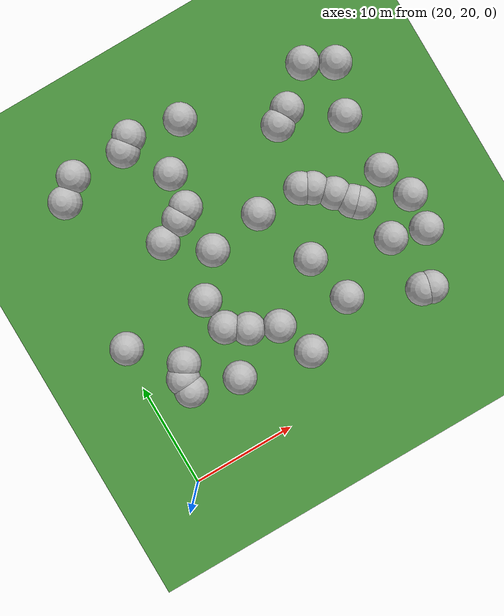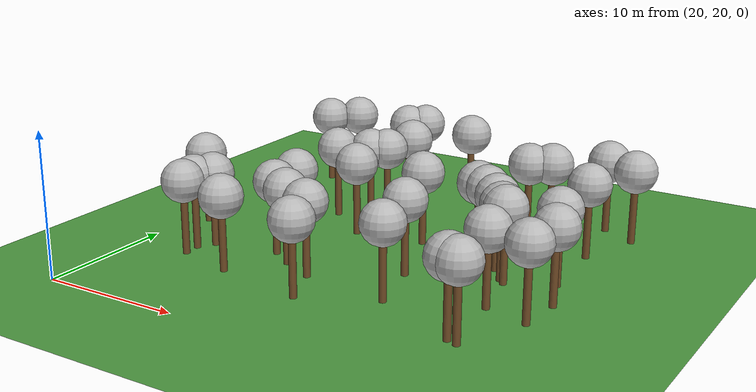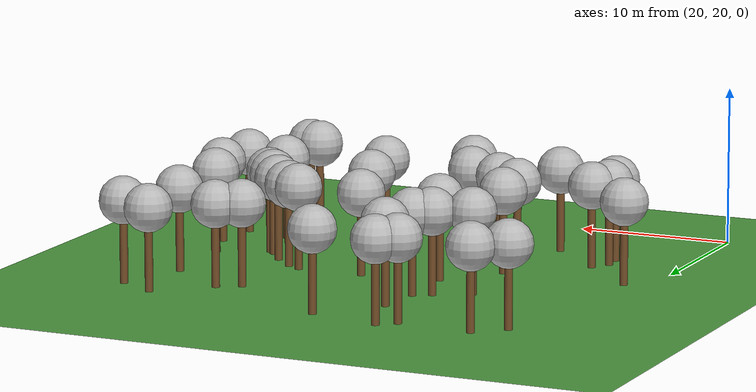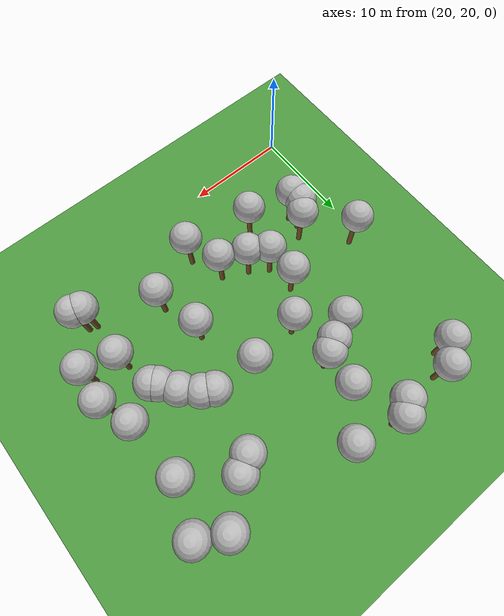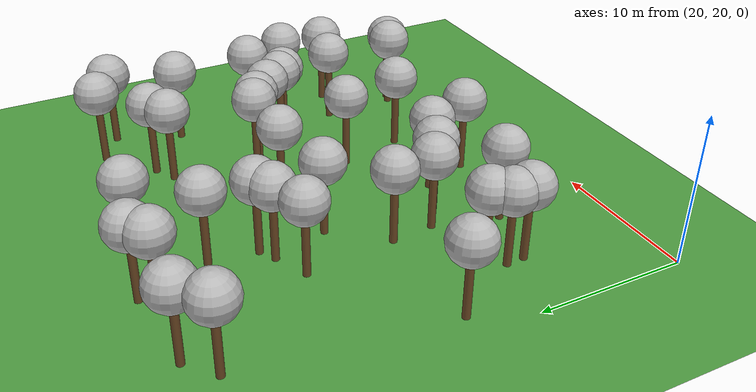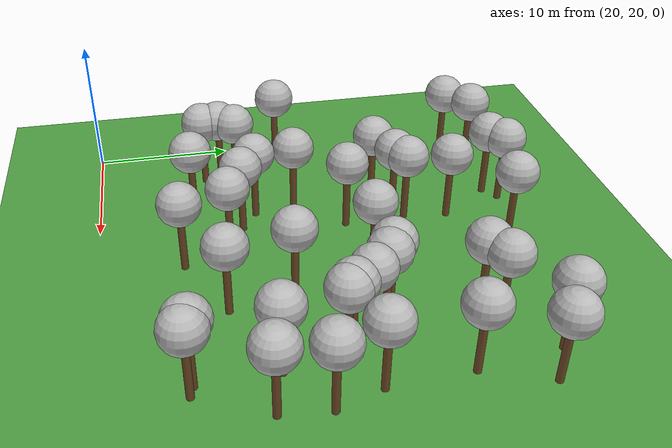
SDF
<sdf version="1.5">
 <world name="default">
  <model name="tree_simple475">
   <static>1</static>
   <link name="link">
    <pose>0 0 0.1 0 -0 0</pose>
    <collision name="collision_trunk">
     <pose>0 0 2 0 -0 0</pose>
     <geometry><cylinder><radius>0.25</radius><length>4</length></cylinder></geometry>
    </collision>
    <collision name="collision_treetop">
     <pose>0 0 5.2 0 -0 0</pose>
     <geometry><sphere><radius>1.5</radius></sphere></geometry>
    </collision>
    <visual name="trunk">
     <pose>0 0 2 0 -0 0</pose>
     <geometry><cylinder><radius>0.25</radius><length>4</length></cylinder></geometry>
     <material>
      <script>
       <uri>model://tree_simple/scripts</uri>
       <uri>model://tree_simple/materials/textures</uri>
       <name>TreeSimple/Trunk</name>
      </script>
     </material>
    </visual>
    <visual name="treetop">
     <pose>0 0 5.2 0 -0 0</pose>
     <geometry><sphere><radius>1.5</radius></sphere></geometry>
     <material>
      <script>
       <uri>model://tree_simple/scripts</uri>
       <uri>model://tree_simple/materials/textures</uri>
       <name>TreeSimple/Treetop</name>
      </script>
     </material>
    </visual>
   </link>
   <pose>30.9431222124 49.7431013716 0 0 -0 0</pose>
  </model>
  <model name="tree_simple459">
   <static>1</static>
   <link name="link">
    <pose>0 0 0.1 0 -0 0</pose>
    <collision name="collision_trunk">
     <pose>0 0 2 0 -0 0</pose>
     <geometry><cylinder><radius>0.25</radius><length>4</length></cylinder></geometry>
    </collision>
    <collision name="collision_treetop">
     <pose>0 0 5.2 0 -0 0</pose>
     <geometry><sphere><radius>1.5</radius></sphere></geometry>
    </collision>
    <visual name="trunk">
     <pose>0 0 2 0 -0 0</pose>
     <geometry><cylinder><radius>0.25</radius><length>4</length></cylinder></geometry>
     <material>
      <script>
       <uri>model://tree_simple/scripts</uri>
       <uri>model://tree_simple/materials/textures</uri>
       <name>TreeSimple/Trunk</name>
      </script>
     </material>
    </visual>
    <visual name="treetop">
     <pose>0 0 5.2 0 -0 0</pose>
     <geometry><sphere><radius>1.5</radius></sphere></geometry>
     <material>
      <script>
       <uri>model://tree_simple/scripts</uri>
       <uri>model://tree_simple/materials/textures</uri>
       <name>TreeSimple/Treetop</name>
      </script>
     </material>
    </visual>
   </link>
   <pose>23.3051385383 47.6025012909 0 0 -0 0</pose>
  </model>
  <model name="tree_simple452">
   <static>1</static>
   <link name="link">
    <pose>0 0 0.1 0 -0 0</pose>
    <collision name="collision_trunk">
     <pose>0 0 2 0 -0 0</pose>
     <geometry><cylinder><radius>0.25</radius><length>4</length></cylinder></geometry>
    </collision>
    <collision name="collision_treetop">
     <pose>0 0 5.2 0 -0 0</pose>
     <geometry><sphere><radius>1.5</radius></sphere></geometry>
    </collision>
    <visual name="trunk">
     <pose>0 0 2 0 -0 0</pose>
     <geometry><cylinder><radius>0.25</radius><length>4</length></cylinder></geometry>
     <material>
      <script>
       <uri>model://tree_simple/scripts</uri>
       <uri>model://tree_simple/materials/textures</uri>
       <name>TreeSimple/Trunk</name>
      </script>
     </material>
    </visual>
    <visual name="treetop">
     <pose>0 0 5.2 0 -0 0</pose>
     <geometry><sphere><radius>1.5</radius></sphere></geometry>
     <material>
      <script>
       <uri>model://tree_simple/scripts</uri>
       <uri>model://tree_simple/materials/textures</uri>
       <name>TreeSimple/Treetop</name>
      </script>
     </material>
    </visual>
   </link>
   <pose>21.4881506157 34.0286005496 0 0 -0 0</pose>
  </model>
  <model name="tree_simple449">
   <static>1</static>
   <link name="link">
    <pose>0 0 0.1 0 -0 0</pose>
    <collision name="collision_trunk">
     <pose>0 0 2 0 -0 0</pose>
     <geometry><cylinder><radius>0.25</radius><length>4</length></cylinder></geometry>
    </collision>
    <collision name="collision_treetop">
     <pose>0 0 5.2 0 -0 0</pose>
     <geometry><sphere><radius>1.5</radius></sphere></geometry>
    </collision>
    <visual name="trunk">
     <pose>0 0 2 0 -0 0</pose>
     <geometry><cylinder><radius>0.25</radius><length>4</length></cylinder></geometry>
     <material>
      <script>
       <uri>model://tree_simple/scripts</uri>
       <uri>model://tree_simple/materials/textures</uri>
       <name>TreeSimple/Trunk</name>
      </script>
     </material>
    </visual>
    <visual name="treetop">
     <pose>0 0 5.2 0 -0 0</pose>
     <geometry><sphere><radius>1.5</radius></sphere></geometry>
     <material>
      <script>
       <uri>model://tree_simple/scripts</uri>
       <uri>model://tree_simple/materials/textures</uri>
       <name>TreeSimple/Treetop</name>
      </script>
     </material>
    </visual>
   </link>
   <pose>32.2301413543 37.584175072 0 0 -0 0</pose>
  </model>
  <model name="tree_simple435">
   <static>1</static>
   <link name="link">
    <pose>0 0 0.1 0 -0 0</pose>
    <collision name="collision_trunk">
     <pose>0 0 2 0 -0 0</pose>
     <geometry><cylinder><radius>0.25</radius><length>4</length></cylinder></geometry>
    </collision>
    <collision name="collision_treetop">
     <pose>0 0 5.2 0 -0 0</pose>
     <geometry><sphere><radius>1.5</radius></sphere></geometry>
    </collision>
    <visual name="trunk">
     <pose>0 0 2 0 -0 0</pose>
     <geometry><cylinder><radius>0.25</radius><length>4</length></cylinder></geometry>
     <material>
      <script>
       <uri>model://tree_simple/scripts</uri>
       <uri>model://tree_simple/materials/textures</uri>
       <name>TreeSimple/Trunk</name>
      </script>
     </material>
    </visual>
    <visual name="treetop">
     <pose>0 0 5.2 0 -0 0</pose>
     <geometry><sphere><radius>1.5</radius></sphere></geometry>
     <material>
      <script>
       <uri>model://tree_simple/scripts</uri>
       <uri>model://tree_simple/materials/textures</uri>
       <name>TreeSimple/Treetop</name>
      </script>
     </material>
    </visual>
   </link>
   <pose>25.0532985597 49.162593115 0 0 -0 0</pose>
  </model>
  <model name="tree_simple426">
   <static>1</static>
   <link name="link">
    <pose>0 0 0.1 0 -0 0</pose>
    <collision name="collision_trunk">
     <pose>0 0 2 0 -0 0</pose>
     <geometry><cylinder><radius>0.25</radius><length>4</length></cylinder></geometry>
    </collision>
    <collision name="collision_treetop">
     <pose>0 0 5.2 0 -0 0</pose>
     <geometry><sphere><radius>1.5</radius></sphere></geometry>
    </collision>
    <visual name="trunk">
     <pose>0 0 2 0 -0 0</pose>
     <geometry><cylinder><radius>0.25</radius><length>4</length></cylinder></geometry>
     <material>
      <script>
       <uri>model://tree_simple/scripts</uri>
       <uri>model://tree_simple/materials/textures</uri>
       <name>TreeSimple/Trunk</name>
      </script>
     </material>
    </visual>
    <visual name="treetop">
     <pose>0 0 5.2 0 -0 0</pose>
     <geometry><sphere><radius>1.5</radius></sphere></geometry>
     <material>
      <script>
       <uri>model://tree_simple/scripts</uri>
       <uri>model://tree_simple/materials/textures</uri>
       <name>TreeSimple/Treetop</name>
      </script>
     </material>
    </visual>
   </link>
   <pose>48.2961501598 36.1951986296 0 0 -0 0</pose>
  </model>
  <model name="tree_simple414">
   <static>1</static>
   <link name="link">
    <pose>0 0 0.1 0 -0 0</pose>
    <collision name="collision_trunk">
     <pose>0 0 2 0 -0 0</pose>
     <geometry><cylinder><radius>0.25</radius><length>4</length></cylinder></geometry>
    </collision>
    <collision name="collision_treetop">
     <pose>0 0 5.2 0 -0 0</pose>
     <geometry><sphere><radius>1.5</radius></sphere></geometry>
    </collision>
    <visual name="trunk">
     <pose>0 0 2 0 -0 0</pose>
     <geometry><cylinder><radius>0.25</radius><length>4</length></cylinder></geometry>
     <material>
      <script>
       <uri>model://tree_simple/scripts</uri>
       <uri>model://tree_simple/materials/textures</uri>
       <name>TreeSimple/Trunk</name>
      </script>
     </material>
    </visual>
    <visual name="treetop">
     <pose>0 0 5.2 0 -0 0</pose>
     <geometry><sphere><radius>1.5</radius></sphere></geometry>
     <material>
      <script>
       <uri>model://tree_simple/scripts</uri>
       <uri>model://tree_simple/materials/textures</uri>
       <name>TreeSimple/Treetop</name>
      </script>
     </material>
    </visual>
   </link>
   <pose>44.7953546514 35.1223055557 0 0 -0 0</pose>
  </model>
  <model name="tree_simple402">
   <static>1</static>
   <link name="link">
    <pose>0 0 0.1 0 -0 0</pose>
    <collision name="collision_trunk">
     <pose>0 0 2 0 -0 0</pose>
     <geometry><cylinder><radius>0.25</radius><length>4</length></cylinder></geometry>
    </collision>
    <collision name="collision_treetop">
     <pose>0 0 5.2 0 -0 0</pose>
     <geometry><sphere><radius>1.5</radius></sphere></geometry>
    </collision>
    <visual name="trunk">
     <pose>0 0 2 0 -0 0</pose>
     <geometry><cylinder><radius>0.25</radius><length>4</length></cylinder></geometry>
     <material>
      <script>
       <uri>model://tree_simple/scripts</uri>
       <uri>model://tree_simple/materials/textures</uri>
       <name>TreeSimple/Trunk</name>
      </script>
     </material>
    </visual>
    <visual name="treetop">
     <pose>0 0 5.2 0 -0 0</pose>
     <geometry><sphere><radius>1.5</radius></sphere></geometry>
     <material>
      <script>
       <uri>model://tree_simple/scripts</uri>
       <uri>model://tree_simple/materials/textures</uri>
       <name>TreeSimple/Treetop</name>
      </script>
     </material>
    </visual>
   </link>
   <pose>46.1530364681 25.5114731744 0 0 -0 0</pose>
  </model>
  <model name="tree_simple388">
   <static>1</static>
   <link name="link">
    <pose>0 0 0.1 0 -0 0</pose>
    <collision name="collision_trunk">
     <pose>0 0 2 0 -0 0</pose>
     <geometry><cylinder><radius>0.25</radius><length>4</length></cylinder></geometry>
    </collision>
    <collision name="collision_treetop">
     <pose>0 0 5.2 0 -0 0</pose>
     <geometry><sphere><radius>1.5</radius></sphere></geometry>
    </collision>
    <visual name="trunk">
     <pose>0 0 2 0 -0 0</pose>
     <geometry><cylinder><radius>0.25</radius><length>4</length></cylinder></geometry>
     <material>
      <script>
       <uri>model://tree_simple/scripts</uri>
       <uri>model://tree_simple/materials/textures</uri>
       <name>TreeSimple/Trunk</name>
      </script>
     </material>
    </visual>
    <visual name="treetop">
     <pose>0 0 5.2 0 -0 0</pose>
     <geometry><sphere><radius>1.5</radius></sphere></geometry>
     <material>
      <script>
       <uri>model://tree_simple/scripts</uri>
       <uri>model://tree_simple/materials/textures</uri>
       <name>TreeSimple/Treetop</name>
      </script>
     </material>
    </visual>
   </link>
   <pose>42.4041487093 37.8396173547 0 0 -0 0</pose>
  </model>
  <model name="tree_simple384">
   <static>1</static>
   <link name="link">
    <pose>0 0 0.1 0 -0 0</pose>
    <collision name="collision_trunk">
     <pose>0 0 2 0 -0 0</pose>
     <geometry><cylinder><radius>0.25</radius><length>4</length></cylinder></geometry>
    </collision>
    <collision name="collision_treetop">
     <pose>0 0 5.2 0 -0 0</pose>
     <geometry><sphere><radius>1.5</radius></sphere></geometry>
    </collision>
    <visual name="trunk">
     <pose>0 0 2 0 -0 0</pose>
     <geometry><cylinder><radius>0.25</radius><length>4</length></cylinder></geometry>
     <material>
      <script>
       <uri>model://tree_simple/scripts</uri>
       <uri>model://tree_simple/materials/textures</uri>
       <name>TreeSimple/Trunk</name>
      </script>
     </material>
    </visual>
    <visual name="treetop">
     <pose>0 0 5.2 0 -0 0</pose>
     <geometry><sphere><radius>1.5</radius></sphere></geometry>
     <material>
      <script>
       <uri>model://tree_simple/scripts</uri>
       <uri>model://tree_simple/materials/textures</uri>
       <name>TreeSimple/Treetop</name>
      </script>
     </material>
    </visual>
   </link>
   <pose>47.965270182 41.8315973536 0 0 -0 0</pose>
  </model>
  <model name="tree_simple366">
   <static>1</static>
   <link name="link">
    <pose>0 0 0.1 0 -0 0</pose>
    <collision name="collision_trunk">
     <pose>0 0 2 0 -0 0</pose>
     <geometry><cylinder><radius>0.25</radius><length>4</length></cylinder></geometry>
    </collision>
    <collision name="collision_treetop">
     <pose>0 0 5.2 0 -0 0</pose>
     <geometry><sphere><radius>1.5</radius></sphere></geometry>
    </collision>
    <visual name="trunk">
     <pose>0 0 2 0 -0 0</pose>
     <geometry><cylinder><radius>0.25</radius><length>4</length></cylinder></geometry>
     <material>
      <script>
       <uri>model://tree_simple/scripts</uri>
       <uri>model://tree_simple/materials/textures</uri>
       <name>TreeSimple/Trunk</name>
      </script>
     </material>
    </visual>
    <visual name="treetop">
     <pose>0 0 5.2 0 -0 0</pose>
     <geometry><sphere><radius>1.5</radius></sphere></geometry>
     <material>
      <script>
       <uri>model://tree_simple/scripts</uri>
       <uri>model://tree_simple/materials/textures</uri>
       <name>TreeSimple/Treetop</name>
      </script>
     </material>
    </visual>
   </link>
   <pose>37.2116014065 38.3075288524 0 0 -0 0</pose>
  </model>
  <model name="tree_simple345">
   <static>1</static>
   <link name="link">
    <pose>0 0 0.1 0 -0 0</pose>
    <collision name="collision_trunk">
     <pose>0 0 2 0 -0 0</pose>
     <geometry><cylinder><radius>0.25</radius><length>4</length></cylinder></geometry>
    </collision>
    <collision name="collision_treetop">
     <pose>0 0 5.2 0 -0 0</pose>
     <geometry><sphere><radius>1.5</radius></sphere></geometry>
    </collision>
    <visual name="trunk">
     <pose>0 0 2 0 -0 0</pose>
     <geometry><cylinder><radius>0.25</radius><length>4</length></cylinder></geometry>
     <material>
      <script>
       <uri>model://tree_simple/scripts</uri>
       <uri>model://tree_simple/materials/textures</uri>
       <name>TreeSimple/Trunk</name>
      </script>
     </material>
    </visual>
    <visual name="treetop">
     <pose>0 0 5.2 0 -0 0</pose>
     <geometry><sphere><radius>1.5</radius></sphere></geometry>
     <material>
      <script>
       <uri>model://tree_simple/scripts</uri>
       <uri>model://tree_simple/materials/textures</uri>
       <name>TreeSimple/Treetop</name>
      </script>
     </material>
    </visual>
   </link>
   <pose>28.6628994432 26.9095330542 0 0 -0 0</pose>
  </model>
  <model name="tree_simple337">
   <static>1</static>
   <link name="link">
    <pose>0 0 0.1 0 -0 0</pose>
    <collision name="collision_trunk">
     <pose>0 0 2 0 -0 0</pose>
     <geometry><cylinder><radius>0.25</radius><length>4</length></cylinder></geometry>
    </collision>
    <collision name="collision_treetop">
     <pose>0 0 5.2 0 -0 0</pose>
     <geometry><sphere><radius>1.5</radius></sphere></geometry>
    </collision>
    <visual name="trunk">
     <pose>0 0 2 0 -0 0</pose>
     <geometry><cylinder><radius>0.25</radius><length>4</length></cylinder></geometry>
     <material>
      <script>
       <uri>model://tree_simple/scripts</uri>
       <uri>model://tree_simple/materials/textures</uri>
       <name>TreeSimple/Trunk</name>
      </script>
     </material>
    </visual>
    <visual name="treetop">
     <pose>0 0 5.2 0 -0 0</pose>
     <geometry><sphere><radius>1.5</radius></sphere></geometry>
     <material>
      <script>
       <uri>model://tree_simple/scripts</uri>
       <uri>model://tree_simple/materials/textures</uri>
       <name>TreeSimple/Treetop</name>
      </script>
     </material>
    </visual>
   </link>
   <pose>43.9549385006 44.8684303608 0 0 -0 0</pose>
  </model>
  <model name="tree_simple332">
   <static>1</static>
   <link name="link">
    <pose>0 0 0.1 0 -0 0</pose>
    <collision name="collision_trunk">
     <pose>0 0 2 0 -0 0</pose>
     <geometry><cylinder><radius>0.25</radius><length>4</length></cylinder></geometry>
    </collision>
    <collision name="collision_treetop">
     <pose>0 0 5.2 0 -0 0</pose>
     <geometry><sphere><radius>1.5</radius></sphere></geometry>
    </collision>
    <visual name="trunk">
     <pose>0 0 2 0 -0 0</pose>
     <geometry><cylinder><radius>0.25</radius><length>4</length></cylinder></geometry>
     <material>
      <script>
       <uri>model://tree_simple/scripts</uri>
       <uri>model://tree_simple/materials/textures</uri>
       <name>TreeSimple/Trunk</name>
      </script>
     </material>
    </visual>
    <visual name="treetop">
     <pose>0 0 5.2 0 -0 0</pose>
     <geometry><sphere><radius>1.5</radius></sphere></geometry>
     <material>
      <script>
       <uri>model://tree_simple/scripts</uri>
       <uri>model://tree_simple/materials/textures</uri>
       <name>TreeSimple/Treetop</name>
      </script>
     </material>
    </visual>
   </link>
   <pose>39.1289157524 32.636662066 0 0 -0 0</pose>
  </model>
  <model name="tree_simple313">
   <static>1</static>
   <link name="link">
    <pose>0 0 0.1 0 -0 0</pose>
    <collision name="collision_trunk">
     <pose>0 0 2 0 -0 0</pose>
     <geometry><cylinder><radius>0.25</radius><length>4</length></cylinder></geometry>
    </collision>
    <collision name="collision_treetop">
     <pose>0 0 5.2 0 -0 0</pose>
     <geometry><sphere><radius>1.5</radius></sphere></geometry>
    </collision>
    <visual name="trunk">
     <pose>0 0 2 0 -0 0</pose>
     <geometry><cylinder><radius>0.25</radius><length>4</length></cylinder></geometry>
     <material>
      <script>
       <uri>model://tree_simple/scripts</uri>
       <uri>model://tree_simple/materials/textures</uri>
       <name>TreeSimple/Trunk</name>
      </script>
     </material>
    </visual>
    <visual name="treetop">
     <pose>0 0 5.2 0 -0 0</pose>
     <geometry><sphere><radius>1.5</radius></sphere></geometry>
     <material>
      <script>
       <uri>model://tree_simple/scripts</uri>
       <uri>model://tree_simple/materials/textures</uri>
       <name>TreeSimple/Treetop</name>
      </script>
     </material>
    </visual>
   </link>
   <pose>25.1046881591 30.4098930382 0 0 -0 0</pose>
  </model>
  <model name="tree_simple306">
   <static>1</static>
   <link name="link">
    <pose>0 0 0.1 0 -0 0</pose>
    <collision name="collision_trunk">
     <pose>0 0 2 0 -0 0</pose>
     <geometry><cylinder><radius>0.25</radius><length>4</length></cylinder></geometry>
    </collision>
    <collision name="collision_treetop">
     <pose>0 0 5.2 0 -0 0</pose>
     <geometry><sphere><radius>1.5</radius></sphere></geometry>
    </collision>
    <visual name="trunk">
     <pose>0 0 2 0 -0 0</pose>
     <geometry><cylinder><radius>0.25</radius><length>4</length></cylinder></geometry>
     <material>
      <script>
       <uri>model://tree_simple/scripts</uri>
       <uri>model://tree_simple/materials/textures</uri>
       <name>TreeSimple/Trunk</name>
      </script>
     </material>
    </visual>
    <visual name="treetop">
     <pose>0 0 5.2 0 -0 0</pose>
     <geometry><sphere><radius>1.5</radius></sphere></geometry>
     <material>
      <script>
       <uri>model://tree_simple/scripts</uri>
       <uri>model://tree_simple/materials/textures</uri>
       <name>TreeSimple/Treetop</name>
      </script>
     </material>
    </visual>
   </link>
   <pose>41.4749799485 38.3641433375 0 0 -0 0</pose>
  </model>
  <model name="tree_simple295">
   <static>1</static>
   <link name="link">
    <pose>0 0 0.1 0 -0 0</pose>
    <collision name="collision_trunk">
     <pose>0 0 2 0 -0 0</pose>
     <geometry><cylinder><radius>0.25</radius><length>4</length></cylinder></geometry>
    </collision>
    <collision name="collision_treetop">
     <pose>0 0 5.2 0 -0 0</pose>
     <geometry><sphere><radius>1.5</radius></sphere></geometry>
    </collision>
    <visual name="trunk">
     <pose>0 0 2 0 -0 0</pose>
     <geometry><cylinder><radius>0.25</radius><length>4</length></cylinder></geometry>
     <material>
      <script>
       <uri>model://tree_simple/scripts</uri>
       <uri>model://tree_simple/materials/textures</uri>
       <name>TreeSimple/Trunk</name>
      </script>
     </material>
    </visual>
    <visual name="treetop">
     <pose>0 0 5.2 0 -0 0</pose>
     <geometry><sphere><radius>1.5</radius></sphere></geometry>
     <material>
      <script>
       <uri>model://tree_simple/scripts</uri>
       <uri>model://tree_simple/materials/textures</uri>
       <name>TreeSimple/Treetop</name>
      </script>
     </material>
    </visual>
   </link>
   <pose>24.4545500201 28.0657933919 0 0 -0 0</pose>
  </model>
  <model name="tree_simple294">
   <static>1</static>
   <link name="link">
    <pose>0 0 0.1 0 -0 0</pose>
    <collision name="collision_trunk">
     <pose>0 0 2 0 -0 0</pose>
     <geometry><cylinder><radius>0.25</radius><length>4</length></cylinder></geometry>
    </collision>
    <collision name="collision_treetop">
     <pose>0 0 5.2 0 -0 0</pose>
     <geometry><sphere><radius>1.5</radius></sphere></geometry>
    </collision>
    <visual name="trunk">
     <pose>0 0 2 0 -0 0</pose>
     <geometry><cylinder><radius>0.25</radius><length>4</length></cylinder></geometry>
     <material>
      <script>
       <uri>model://tree_simple/scripts</uri>
       <uri>model://tree_simple/materials/textures</uri>
       <name>TreeSimple/Trunk</name>
      </script>
     </material>
    </visual>
    <visual name="treetop">
     <pose>0 0 5.2 0 -0 0</pose>
     <geometry><sphere><radius>1.5</radius></sphere></geometry>
     <material>
      <script>
       <uri>model://tree_simple/scripts</uri>
       <uri>model://tree_simple/materials/textures</uri>
       <name>TreeSimple/Treetop</name>
      </script>
     </material>
    </visual>
   </link>
   <pose>29.4568486027 34.1994676111 0 0 -0 0</pose>
  </model>
  <model name="tree_simple265">
   <static>1</static>
   <link name="link">
    <pose>0 0 0.1 0 -0 0</pose>
    <collision name="collision_trunk">
     <pose>0 0 2 0 -0 0</pose>
     <geometry><cylinder><radius>0.25</radius><length>4</length></cylinder></geometry>
    </collision>
    <collision name="collision_treetop">
     <pose>0 0 5.2 0 -0 0</pose>
     <geometry><sphere><radius>1.5</radius></sphere></geometry>
    </collision>
    <visual name="trunk">
     <pose>0 0 2 0 -0 0</pose>
     <geometry><cylinder><radius>0.25</radius><length>4</length></cylinder></geometry>
     <material>
      <script>
       <uri>model://tree_simple/scripts</uri>
       <uri>model://tree_simple/materials/textures</uri>
       <name>TreeSimple/Trunk</name>
      </script>
     </material>
    </visual>
    <visual name="treetop">
     <pose>0 0 5.2 0 -0 0</pose>
     <geometry><sphere><radius>1.5</radius></sphere></geometry>
     <material>
      <script>
       <uri>model://tree_simple/scripts</uri>
       <uri>model://tree_simple/materials/textures</uri>
       <name>TreeSimple/Treetop</name>
      </script>
     </material>
    </visual>
   </link>
   <pose>49.0905511153 29.866561196 0 0 -0 0</pose>
  </model>
  <model name="tree_simple258">
   <static>1</static>
   <link name="link">
    <pose>0 0 0.1 0 -0 0</pose>
    <collision name="collision_trunk">
     <pose>0 0 2 0 -0 0</pose>
     <geometry><cylinder><radius>0.25</radius><length>4</length></cylinder></geometry>
    </collision>
    <collision name="collision_treetop">
     <pose>0 0 5.2 0 -0 0</pose>
     <geometry><sphere><radius>1.5</radius></sphere></geometry>
    </collision>
    <visual name="trunk">
     <pose>0 0 2 0 -0 0</pose>
     <geometry><cylinder><radius>0.25</radius><length>4</length></cylinder></geometry>
     <material>
      <script>
       <uri>model://tree_simple/scripts</uri>
       <uri>model://tree_simple/materials/textures</uri>
       <name>TreeSimple/Trunk</name>
      </script>
     </material>
    </visual>
    <visual name="treetop">
     <pose>0 0 5.2 0 -0 0</pose>
     <geometry><sphere><radius>1.5</radius></sphere></geometry>
     <material>
      <script>
       <uri>model://tree_simple/scripts</uri>
       <uri>model://tree_simple/materials/textures</uri>
       <name>TreeSimple/Treetop</name>
      </script>
     </material>
    </visual>
   </link>
   <pose>24.3825797899 29.2966391115 0 0 -0 0</pose>
  </model>
  <model name="tree_simple238">
   <static>1</static>
   <link name="link">
    <pose>0 0 0.1 0 -0 0</pose>
    <collision name="collision_trunk">
     <pose>0 0 2 0 -0 0</pose>
     <geometry><cylinder><radius>0.25</radius><length>4</length></cylinder></geometry>
    </collision>
    <collision name="collision_treetop">
     <pose>0 0 5.2 0 -0 0</pose>
     <geometry><sphere><radius>1.5</radius></sphere></geometry>
    </collision>
    <visual name="trunk">
     <pose>0 0 2 0 -0 0</pose>
     <geometry><cylinder><radius>0.25</radius><length>4</length></cylinder></geometry>
     <material>
      <script>
       <uri>model://tree_simple/scripts</uri>
       <uri>model://tree_simple/materials/textures</uri>
       <name>TreeSimple/Trunk</name>
      </script>
     </material>
    </visual>
    <visual name="treetop">
     <pose>0 0 5.2 0 -0 0</pose>
     <geometry><sphere><radius>1.5</radius></sphere></geometry>
     <material>
      <script>
       <uri>model://tree_simple/scripts</uri>
       <uri>model://tree_simple/materials/textures</uri>
       <name>TreeSimple/Treetop</name>
      </script>
     </material>
    </visual>
   </link>
   <pose>46.8869167901 25.2834545483 0 0 -0 0</pose>
  </model>
  <model name="tree_simple230">
   <static>1</static>
   <link name="link">
    <pose>0 0 0.1 0 -0 0</pose>
    <collision name="collision_trunk">
     <pose>0 0 2 0 -0 0</pose>
     <geometry><cylinder><radius>0.25</radius><length>4</length></cylinder></geometry>
    </collision>
    <collision name="collision_treetop">
     <pose>0 0 5.2 0 -0 0</pose>
     <geometry><sphere><radius>1.5</radius></sphere></geometry>
    </collision>
    <visual name="trunk">
     <pose>0 0 2 0 -0 0</pose>
     <geometry><cylinder><radius>0.25</radius><length>4</length></cylinder></geometry>
     <material>
      <script>
       <uri>model://tree_simple/scripts</uri>
       <uri>model://tree_simple/materials/textures</uri>
       <name>TreeSimple/Trunk</name>
      </script>
     </material>
    </visual>
    <visual name="treetop">
     <pose>0 0 5.2 0 -0 0</pose>
     <geometry><sphere><radius>1.5</radius></sphere></geometry>
     <material>
      <script>
       <uri>model://tree_simple/scripts</uri>
       <uri>model://tree_simple/materials/textures</uri>
       <name>TreeSimple/Treetop</name>
      </script>
     </material>
    </visual>
   </link>
   <pose>49.3839982887 33.0886722223 0 0 -0 0</pose>
  </model>
  <model name="tree_simple197">
   <static>1</static>
   <link name="link">
    <pose>0 0 0.1 0 -0 0</pose>
    <collision name="collision_trunk">
     <pose>0 0 2 0 -0 0</pose>
     <geometry><cylinder><radius>0.25</radius><length>4</length></cylinder></geometry>
    </collision>
    <collision name="collision_treetop">
     <pose>0 0 5.2 0 -0 0</pose>
     <geometry><sphere><radius>1.5</radius></sphere></geometry>
    </collision>
    <visual name="trunk">
     <pose>0 0 2 0 -0 0</pose>
     <geometry><cylinder><radius>0.25</radius><length>4</length></cylinder></geometry>
     <material>
      <script>
       <uri>model://tree_simple/scripts</uri>
       <uri>model://tree_simple/materials/textures</uri>
       <name>TreeSimple/Trunk</name>
      </script>
     </material>
    </visual>
    <visual name="treetop">
     <pose>0 0 5.2 0 -0 0</pose>
     <geometry><sphere><radius>1.5</radius></sphere></geometry>
     <material>
      <script>
       <uri>model://tree_simple/scripts</uri>
       <uri>model://tree_simple/materials/textures</uri>
       <name>TreeSimple/Treetop</name>
      </script>
     </material>
    </visual>
   </link>
   <pose>45.2259514073 34.7129577048 0 0 -0 0</pose>
  </model>
  <model name="tree_simple190">
   <static>1</static>
   <link name="link">
    <pose>0 0 0.1 0 -0 0</pose>
    <collision name="collision_trunk">
     <pose>0 0 2 0 -0 0</pose>
     <geometry><cylinder><radius>0.25</radius><length>4</length></cylinder></geometry>
    </collision>
    <collision name="collision_treetop">
     <pose>0 0 5.2 0 -0 0</pose>
     <geometry><sphere><radius>1.5</radius></sphere></geometry>
    </collision>
    <visual name="trunk">
     <pose>0 0 2 0 -0 0</pose>
     <geometry><cylinder><radius>0.25</radius><length>4</length></cylinder></geometry>
     <material>
      <script>
       <uri>model://tree_simple/scripts</uri>
       <uri>model://tree_simple/materials/textures</uri>
       <name>TreeSimple/Trunk</name>
      </script>
     </material>
    </visual>
    <visual name="treetop">
     <pose>0 0 5.2 0 -0 0</pose>
     <geometry><sphere><radius>1.5</radius></sphere></geometry>
     <material>
      <script>
       <uri>model://tree_simple/scripts</uri>
       <uri>model://tree_simple/materials/textures</uri>
       <name>TreeSimple/Treetop</name>
      </script>
     </material>
    </visual>
   </link>
   <pose>33.8682165362 29.0192768916 0 0 -0 0</pose>
  </model>
  <model name="tree_simple180">
   <static>1</static>
   <link name="link">
    <pose>0 0 0.1 0 -0 0</pose>
    <collision name="collision_trunk">
     <pose>0 0 2 0 -0 0</pose>
     <geometry><cylinder><radius>0.25</radius><length>4</length></cylinder></geometry>
    </collision>
    <collision name="collision_treetop">
     <pose>0 0 5.2 0 -0 0</pose>
     <geometry><sphere><radius>1.5</radius></sphere></geometry>
    </collision>
    <visual name="trunk">
     <pose>0 0 2 0 -0 0</pose>
     <geometry><cylinder><radius>0.25</radius><length>4</length></cylinder></geometry>
     <material>
      <script>
       <uri>model://tree_simple/scripts</uri>
       <uri>model://tree_simple/materials/textures</uri>
       <name>TreeSimple/Trunk</name>
      </script>
     </material>
    </visual>
    <visual name="treetop">
     <pose>0 0 5.2 0 -0 0</pose>
     <geometry><sphere><radius>1.5</radius></sphere></geometry>
     <material>
      <script>
       <uri>model://tree_simple/scripts</uri>
       <uri>model://tree_simple/materials/textures</uri>
       <name>TreeSimple/Treetop</name>
      </script>
     </material>
    </visual>
   </link>
   <pose>31.0354412198 41.3621247095 0 0 -0 0</pose>
  </model>
  <model name="tree_simple164">
   <static>1</static>
   <link name="link">
    <pose>0 0 0.1 0 -0 0</pose>
    <collision name="collision_trunk">
     <pose>0 0 2 0 -0 0</pose>
     <geometry><cylinder><radius>0.25</radius><length>4</length></cylinder></geometry>
    </collision>
    <collision name="collision_treetop">
     <pose>0 0 5.2 0 -0 0</pose>
     <geometry><sphere><radius>1.5</radius></sphere></geometry>
    </collision>
    <visual name="trunk">
     <pose>0 0 2 0 -0 0</pose>
     <geometry><cylinder><radius>0.25</radius><length>4</length></cylinder></geometry>
     <material>
      <script>
       <uri>model://tree_simple/scripts</uri>
       <uri>model://tree_simple/materials/textures</uri>
       <name>TreeSimple/Trunk</name>
      </script>
     </material>
    </visual>
    <visual name="treetop">
     <pose>0 0 5.2 0 -0 0</pose>
     <geometry><sphere><radius>1.5</radius></sphere></geometry>
     <material>
      <script>
       <uri>model://tree_simple/scripts</uri>
       <uri>model://tree_simple/materials/textures</uri>
       <name>TreeSimple/Treetop</name>
      </script>
     </material>
    </visual>
   </link>
   <pose>32.4161735763 45.136147052 0 0 -0 0</pose>
  </model>
  <model name="tree_simple159">
   <static>1</static>
   <link name="link">
    <pose>0 0 0.1 0 -0 0</pose>
    <collision name="collision_trunk">
     <pose>0 0 2 0 -0 0</pose>
     <geometry><cylinder><radius>0.25</radius><length>4</length></cylinder></geometry>
    </collision>
    <collision name="collision_treetop">
     <pose>0 0 5.2 0 -0 0</pose>
     <geometry><sphere><radius>1.5</radius></sphere></geometry>
    </collision>
    <visual name="trunk">
     <pose>0 0 2 0 -0 0</pose>
     <geometry><cylinder><radius>0.25</radius><length>4</length></cylinder></geometry>
     <material>
      <script>
       <uri>model://tree_simple/scripts</uri>
       <uri>model://tree_simple/materials/textures</uri>
       <name>TreeSimple/Trunk</name>
      </script>
     </material>
    </visual>
    <visual name="treetop">
     <pose>0 0 5.2 0 -0 0</pose>
     <geometry><sphere><radius>1.5</radius></sphere></geometry>
     <material>
      <script>
       <uri>model://tree_simple/scripts</uri>
       <uri>model://tree_simple/materials/textures</uri>
       <name>TreeSimple/Treetop</name>
      </script>
     </material>
    </visual>
   </link>
   <pose>28.8379877366 40.3060921844 0 0 -0 0</pose>
  </model>
  <model name="tree_simple150">
   <static>1</static>
   <link name="link">
    <pose>0 0 0.1 0 -0 0</pose>
    <collision name="collision_trunk">
     <pose>0 0 2 0 -0 0</pose>
     <geometry><cylinder><radius>0.25</radius><length>4</length></cylinder></geometry>
    </collision>
    <collision name="collision_treetop">
     <pose>0 0 5.2 0 -0 0</pose>
     <geometry><sphere><radius>1.5</radius></sphere></geometry>
    </collision>
    <visual name="trunk">
     <pose>0 0 2 0 -0 0</pose>
     <geometry><cylinder><radius>0.25</radius><length>4</length></cylinder></geometry>
     <material>
      <script>
       <uri>model://tree_simple/scripts</uri>
       <uri>model://tree_simple/materials/textures</uri>
       <name>TreeSimple/Trunk</name>
      </script>
     </material>
    </visual>
    <visual name="treetop">
     <pose>0 0 5.2 0 -0 0</pose>
     <geometry><sphere><radius>1.5</radius></sphere></geometry>
     <material>
      <script>
       <uri>model://tree_simple/scripts</uri>
       <uri>model://tree_simple/materials/textures</uri>
       <name>TreeSimple/Treetop</name>
      </script>
     </material>
    </visual>
   </link>
   <pose>40.1655547132 28.2074332225 0 0 -0 0</pose>
  </model>
  <model name="tree_simple144">
   <static>1</static>
   <link name="link">
    <pose>0 0 0.1 0 -0 0</pose>
    <collision name="collision_trunk">
     <pose>0 0 2 0 -0 0</pose>
     <geometry><cylinder><radius>0.25</radius><length>4</length></cylinder></geometry>
    </collision>
    <collision name="collision_treetop">
     <pose>0 0 5.2 0 -0 0</pose>
     <geometry><sphere><radius>1.5</radius></sphere></geometry>
    </collision>
    <visual name="trunk">
     <pose>0 0 2 0 -0 0</pose>
     <geometry><cylinder><radius>0.25</radius><length>4</length></cylinder></geometry>
     <material>
      <script>
       <uri>model://tree_simple/scripts</uri>
       <uri>model://tree_simple/materials/textures</uri>
       <name>TreeSimple/Trunk</name>
      </script>
     </material>
    </visual>
    <visual name="treetop">
     <pose>0 0 5.2 0 -0 0</pose>
     <geometry><sphere><radius>1.5</radius></sphere></geometry>
     <material>
      <script>
       <uri>model://tree_simple/scripts</uri>
       <uri>model://tree_simple/materials/textures</uri>
       <name>TreeSimple/Treetop</name>
      </script>
     </material>
    </visual>
   </link>
   <pose>29.8740769381 48.8863352602 0 0 -0 0</pose>
  </model>
  <model name="tree_simple131">
   <static>1</static>
   <link name="link">
    <pose>0 0 0.1 0 -0 0</pose>
    <collision name="collision_trunk">
     <pose>0 0 2 0 -0 0</pose>
     <geometry><cylinder><radius>0.25</radius><length>4</length></cylinder></geometry>
    </collision>
    <collision name="collision_treetop">
     <pose>0 0 5.2 0 -0 0</pose>
     <geometry><sphere><radius>1.5</radius></sphere></geometry>
    </collision>
    <visual name="trunk">
     <pose>0 0 2 0 -0 0</pose>
     <geometry><cylinder><radius>0.25</radius><length>4</length></cylinder></geometry>
     <material>
      <script>
       <uri>model://tree_simple/scripts</uri>
       <uri>model://tree_simple/materials/textures</uri>
       <name>TreeSimple/Trunk</name>
      </script>
     </material>
    </visual>
    <visual name="treetop">
     <pose>0 0 5.2 0 -0 0</pose>
     <geometry><sphere><radius>1.5</radius></sphere></geometry>
     <material>
      <script>
       <uri>model://tree_simple/scripts</uri>
       <uri>model://tree_simple/materials/textures</uri>
       <name>TreeSimple/Treetop</name>
      </script>
     </material>
    </visual>
   </link>
   <pose>46.034478037 30.677477771 0 0 -0 0</pose>
  </model>
  <model name="tree_simple99">
   <static>1</static>
   <link name="link">
    <pose>0 0 0.1 0 -0 0</pose>
    <collision name="collision_trunk">
     <pose>0 0 2 0 -0 0</pose>
     <geometry><cylinder><radius>0.25</radius><length>4</length></cylinder></geometry>
    </collision>
    <collision name="collision_treetop">
     <pose>0 0 5.2 0 -0 0</pose>
     <geometry><sphere><radius>1.5</radius></sphere></geometry>
    </collision>
    <visual name="trunk">
     <pose>0 0 2 0 -0 0</pose>
     <geometry><cylinder><radius>0.25</radius><length>4</length></cylinder></geometry>
     <material>
      <script>
       <uri>model://tree_simple/scripts</uri>
       <uri>model://tree_simple/materials/textures</uri>
       <name>TreeSimple/Trunk</name>
      </script>
     </material>
    </visual>
    <visual name="treetop">
     <pose>0 0 5.2 0 -0 0</pose>
     <geometry><sphere><radius>1.5</radius></sphere></geometry>
     <material>
      <script>
       <uri>model://tree_simple/scripts</uri>
       <uri>model://tree_simple/materials/textures</uri>
       <name>TreeSimple/Treetop</name>
      </script>
     </material>
    </visual>
   </link>
   <pose>43.7646885834 36.5094094544 0 0 -0 0</pose>
  </model>
  <model name="tree_simple97">
   <static>1</static>
   <link name="link">
    <pose>0 0 0.1 0 -0 0</pose>
    <collision name="collision_trunk">
     <pose>0 0 2 0 -0 0</pose>
     <geometry><cylinder><radius>0.25</radius><length>4</length></cylinder></geometry>
    </collision>
    <collision name="collision_treetop">
     <pose>0 0 5.2 0 -0 0</pose>
     <geometry><sphere><radius>1.5</radius></sphere></geometry>
    </collision>
    <visual name="trunk">
     <pose>0 0 2 0 -0 0</pose>
     <geometry><cylinder><radius>0.25</radius><length>4</length></cylinder></geometry>
     <material>
      <script>
       <uri>model://tree_simple/scripts</uri>
       <uri>model://tree_simple/materials/textures</uri>
       <name>TreeSimple/Trunk</name>
      </script>
     </material>
    </visual>
    <visual name="treetop">
     <pose>0 0 5.2 0 -0 0</pose>
     <geometry><sphere><radius>1.5</radius></sphere></geometry>
     <material>
      <script>
       <uri>model://tree_simple/scripts</uri>
       <uri>model://tree_simple/materials/textures</uri>
       <name>TreeSimple/Treetop</name>
      </script>
     </material>
    </visual>
   </link>
   <pose>31.4551659001 30.1710524081 0 0 -0 0</pose>
  </model>
  <model name="tree_simple78">
   <static>1</static>
   <link name="link">
    <pose>0 0 0.1 0 -0 0</pose>
    <collision name="collision_trunk">
     <pose>0 0 2 0 -0 0</pose>
     <geometry><cylinder><radius>0.25</radius><length>4</length></cylinder></geometry>
    </collision>
    <collision name="collision_treetop">
     <pose>0 0 5.2 0 -0 0</pose>
     <geometry><sphere><radius>1.5</radius></sphere></geometry>
    </collision>
    <visual name="trunk">
     <pose>0 0 2 0 -0 0</pose>
     <geometry><cylinder><radius>0.25</radius><length>4</length></cylinder></geometry>
     <material>
      <script>
       <uri>model://tree_simple/scripts</uri>
       <uri>model://tree_simple/materials/textures</uri>
       <name>TreeSimple/Trunk</name>
      </script>
     </material>
    </visual>
    <visual name="treetop">
     <pose>0 0 5.2 0 -0 0</pose>
     <geometry><sphere><radius>1.5</radius></sphere></geometry>
     <material>
      <script>
       <uri>model://tree_simple/scripts</uri>
       <uri>model://tree_simple/materials/textures</uri>
       <name>TreeSimple/Treetop</name>
      </script>
     </material>
    </visual>
   </link>
   <pose>35.525854971 48.7689145504 0 0 -0 0</pose>
  </model>
  <model name="tree_simple65">
   <static>1</static>
   <link name="link">
    <pose>0 0 0.1 0 -0 0</pose>
    <collision name="collision_trunk">
     <pose>0 0 2 0 -0 0</pose>
     <geometry><cylinder><radius>0.25</radius><length>4</length></cylinder></geometry>
    </collision>
    <collision name="collision_treetop">
     <pose>0 0 5.2 0 -0 0</pose>
     <geometry><sphere><radius>1.5</radius></sphere></geometry>
    </collision>
    <visual name="trunk">
     <pose>0 0 2 0 -0 0</pose>
     <geometry><cylinder><radius>0.25</radius><length>4</length></cylinder></geometry>
     <material>
      <script>
       <uri>model://tree_simple/scripts</uri>
       <uri>model://tree_simple/materials/textures</uri>
       <name>TreeSimple/Trunk</name>
      </script>
     </material>
    </visual>
    <visual name="treetop">
     <pose>0 0 5.2 0 -0 0</pose>
     <geometry><sphere><radius>1.5</radius></sphere></geometry>
     <material>
      <script>
       <uri>model://tree_simple/scripts</uri>
       <uri>model://tree_simple/materials/textures</uri>
       <name>TreeSimple/Treetop</name>
      </script>
     </material>
    </visual>
   </link>
   <pose>42.5612978855 44.0438819022 0 0 -0 0</pose>
  </model>
  <model name="tree_simple47">
   <static>1</static>
   <link name="link">
    <pose>0 0 0.1 0 -0 0</pose>
    <collision name="collision_trunk">
     <pose>0 0 2 0 -0 0</pose>
     <geometry><cylinder><radius>0.25</radius><length>4</length></cylinder></geometry>
    </collision>
    <collision name="collision_treetop">
     <pose>0 0 5.2 0 -0 0</pose>
     <geometry><sphere><radius>1.5</radius></sphere></geometry>
    </collision>
    <visual name="trunk">
     <pose>0 0 2 0 -0 0</pose>
     <geometry><cylinder><radius>0.25</radius><length>4</length></cylinder></geometry>
     <material>
      <script>
       <uri>model://tree_simple/scripts</uri>
       <uri>model://tree_simple/materials/textures</uri>
       <name>TreeSimple/Trunk</name>
      </script>
     </material>
    </visual>
    <visual name="treetop">
     <pose>0 0 5.2 0 -0 0</pose>
     <geometry><sphere><radius>1.5</radius></sphere></geometry>
     <material>
      <script>
       <uri>model://tree_simple/scripts</uri>
       <uri>model://tree_simple/materials/textures</uri>
       <name>TreeSimple/Treetop</name>
      </script>
     </material>
    </visual>
   </link>
   <pose>29.7448798929 31.3110169918 0 0 -0 0</pose>
  </model>
  <model name="tree_simple44">
   <static>1</static>
   <link name="link">
    <pose>0 0 0.1 0 -0 0</pose>
    <collision name="collision_trunk">
     <pose>0 0 2 0 -0 0</pose>
     <geometry><cylinder><radius>0.25</radius><length>4</length></cylinder></geometry>
    </collision>
    <collision name="collision_treetop">
     <pose>0 0 5.2 0 -0 0</pose>
     <geometry><sphere><radius>1.5</radius></sphere></geometry>
    </collision>
    <visual name="trunk">
     <pose>0 0 2 0 -0 0</pose>
     <geometry><cylinder><radius>0.25</radius><length>4</length></cylinder></geometry>
     <material>
      <script>
       <uri>model://tree_simple/scripts</uri>
       <uri>model://tree_simple/materials/textures</uri>
       <name>TreeSimple/Trunk</name>
      </script>
     </material>
    </visual>
    <visual name="treetop">
     <pose>0 0 5.2 0 -0 0</pose>
     <geometry><sphere><radius>1.5</radius></sphere></geometry>
     <material>
      <script>
       <uri>model://tree_simple/scripts</uri>
       <uri>model://tree_simple/materials/textures</uri>
       <name>TreeSimple/Treetop</name>
      </script>
     </material>
    </visual>
   </link>
   <pose>35.1253684335 25.7534131059 0 0 -0 0</pose>
  </model>
  <model name="tree_simple33">
   <static>1</static>
   <link name="link">
    <pose>0 0 0.1 0 -0 0</pose>
    <collision name="collision_trunk">
     <pose>0 0 2 0 -0 0</pose>
     <geometry><cylinder><radius>0.25</radius><length>4</length></cylinder></geometry>
    </collision>
    <collision name="collision_treetop">
     <pose>0 0 5.2 0 -0 0</pose>
     <geometry><sphere><radius>1.5</radius></sphere></geometry>
    </collision>
    <visual name="trunk">
     <pose>0 0 2 0 -0 0</pose>
     <geometry><cylinder><radius>0.25</radius><length>4</length></cylinder></geometry>
     <material>
      <script>
       <uri>model://tree_simple/scripts</uri>
       <uri>model://tree_simple/materials/textures</uri>
       <name>TreeSimple/Trunk</name>
      </script>
     </material>
    </visual>
    <visual name="treetop">
     <pose>0 0 5.2 0 -0 0</pose>
     <geometry><sphere><radius>1.5</radius></sphere></geometry>
     <material>
      <script>
       <uri>model://tree_simple/scripts</uri>
       <uri>model://tree_simple/materials/textures</uri>
       <name>TreeSimple/Treetop</name>
      </script>
     </material>
    </visual>
   </link>
   <pose>49.5679198659 46.2009891227 0 0 -0 0</pose>
  </model>
  <model name="tree_simple24">
   <static>1</static>
   <link name="link">
    <pose>0 0 0.1 0 -0 0</pose>
    <collision name="collision_trunk">
     <pose>0 0 2 0 -0 0</pose>
     <geometry><cylinder><radius>0.25</radius><length>4</length></cylinder></geometry>
    </collision>
    <collision name="collision_treetop">
     <pose>0 0 5.2 0 -0 0</pose>
     <geometry><sphere><radius>1.5</radius></sphere></geometry>
    </collision>
    <visual name="trunk">
     <pose>0 0 2 0 -0 0</pose>
     <geometry><cylinder><radius>0.25</radius><length>4</length></cylinder></geometry>
     <material>
      <script>
       <uri>model://tree_simple/scripts</uri>
       <uri>model://tree_simple/materials/textures</uri>
       <name>TreeSimple/Trunk</name>
      </script>
     </material>
    </visual>
    <visual name="treetop">
     <pose>0 0 5.2 0 -0 0</pose>
     <geometry><sphere><radius>1.5</radius></sphere></geometry>
     <material>
      <script>
       <uri>model://tree_simple/scripts</uri>
       <uri>model://tree_simple/materials/textures</uri>
       <name>TreeSimple/Treetop</name>
      </script>
     </material>
    </visual>
   </link>
   <pose>32.0910142743 41.9793908422 0 0 -0 0</pose>
  </model>
  <model name="tree_simple11">
   <static>1</static>
   <link name="link">
    <pose>0 0 0.1 0 -0 0</pose>
    <collision name="collision_trunk">
     <pose>0 0 2 0 -0 0</pose>
     <geometry><cylinder><radius>0.25</radius><length>4</length></cylinder></geometry>
    </collision>
    <collision name="collision_treetop">
     <pose>0 0 5.2 0 -0 0</pose>
     <geometry><sphere><radius>1.5</radius></sphere></geometry>
    </collision>
    <visual name="trunk">
     <pose>0 0 2 0 -0 0</pose>
     <geometry><cylinder><radius>0.25</radius><length>4</length></cylinder></geometry>
     <material>
      <script>
       <uri>model://tree_simple/scripts</uri>
       <uri>model://tree_simple/materials/textures</uri>
       <name>TreeSimple/Trunk</name>
      </script>
     </material>
    </visual>
    <visual name="treetop">
     <pose>0 0 5.2 0 -0 0</pose>
     <geometry><sphere><radius>1.5</radius></sphere></geometry>
     <material>
      <script>
       <uri>model://tree_simple/scripts</uri>
       <uri>model://tree_simple/materials/textures</uri>
       <name>TreeSimple/Treetop</name>
      </script>
     </material>
    </visual>
   </link>
   <pose>47.1204794218 47.5889686544 0 0 -0 0</pose>
  </model>
  <model name="ground_plane">
   <static>true</static>
   <link name="link">
    <collision name="collision">
     <geometry><plane><normal>0 0 1</normal><size>250 250</size></plane></geometry>
     <surface><friction><ode><mu>100</mu><mu2>50</mu2></ode></friction></surface>
    </collision>
    <visual name="grass">
     <cast_shadows>false</cast_shadows>
     <geometry><plane><normal>0 0 1</normal><size>150 250</size></plane></geometry>
     <material>
      <script><uri>file://media/materials/scripts/gazebo.material</uri><name>Gazebo/Grass</name></script>
     </material>
    </visual>
   </link>
  </model>
 </world>
</sdf>
